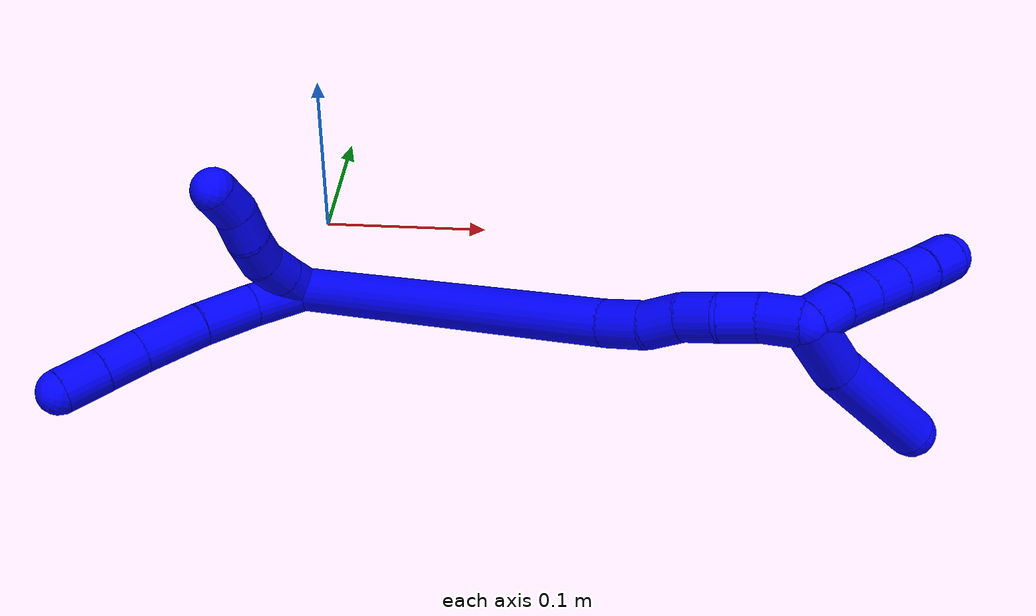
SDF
<sdf version="1.7">
 <world name="default">
  <model name="1">
   <static>0</static>
   <link name="1">
    <collision name="collision-cylinder-e_1_2_8">
     <pose>-0.005497 -0.004464 0.015262 0.284575 -0.332811 -0.048113</pose>
     <geometry><cylinder><radius>0.0125</radius><length>0.033649</length></cylinder></geometry>
     <surface>
      <friction><ode><mu>1.16</mu><mu2>1.16</mu2><slip1>0</slip1><slip2>0</slip2></ode></friction>
      <contact><ode><kp>1e+06</kp><kd>1</kd><max_vel>0</max_vel><min_depth>0.001</min_depth></ode></contact>
     </surface>
    </collision>
    <visual name="visual-cylinder-e_1_2_8">
     <pose>-0.005497 -0.004464 0.015262 0.284575 -0.332811 -0.048113</pose>
     <geometry><cylinder><radius>0.0125</radius><length>0.033649</length></cylinder></geometry>
     <material><ambient>0 0 1 1</ambient></material>
    </visual>
    <collision name="collision-cylinder-e_2_8_9">
     <pose>-0.015209 -0.014167 0.045218 0.342435 -0.263956 -0.045899</pose>
     <geometry><cylinder><radius>0.0125</radius><length>0.032321</length></cylinder></geometry>
     <surface>
      <friction><ode><mu>1.16</mu><mu2>1.16</mu2><slip1>0</slip1><slip2>0</slip2></ode></friction>
      <contact><ode><kp>1e+06</kp><kd>1</kd><max_vel>0</max_vel><min_depth>0.001</min_depth></ode></contact>
     </surface>
    </collision>
    <visual name="visual-cylinder-e_2_8_9">
     <pose>-0.015209 -0.014167 0.045218 0.342435 -0.263956 -0.045899</pose>
     <geometry><cylinder><radius>0.0125</radius><length>0.032321</length></cylinder></geometry>
     <material><ambient>0 0 1 1</ambient></material>
    </visual>
    <collision name="collision-cylinder-e_3_9_10">
     <pose>-0.024936 -0.026271 0.075903 0.405572 -0.30664 -0.063526</pose>
     <geometry><cylinder><radius>0.0125</radius><length>0.036506</length></cylinder></geometry>
     <surface>
      <friction><ode><mu>1.16</mu><mu2>1.16</mu2><slip1>0</slip1><slip2>0</slip2></ode></friction>
      <contact><ode><kp>1e+06</kp><kd>1</kd><max_vel>0</max_vel><min_depth>0.001</min_depth></ode></contact>
     </surface>
    </collision>
    <visual name="visual-cylinder-e_3_9_10">
     <pose>-0.024936 -0.026271 0.075903 0.405572 -0.30664 -0.063526</pose>
     <geometry><cylinder><radius>0.0125</radius><length>0.036506</length></cylinder></geometry>
     <material><ambient>0 0 1 1</ambient></material>
    </visual>
    <collision name="collision-cylinder-e_4_10_11">
     <pose>-0.033392 -0.037988 0.101984 0.448121 -0.257351 -0.058956</pose>
     <geometry><cylinder><radius>0.0125</radius><length>0.023154</length></cylinder></geometry>
     <surface>
      <friction><ode><mu>1.16</mu><mu2>1.16</mu2><slip1>0</slip1><slip2>0</slip2></ode></friction>
      <contact><ode><kp>1e+06</kp><kd>1</kd><max_vel>0</max_vel><min_depth>0.001</min_depth></ode></contact>
     </surface>
    </collision>
    <visual name="visual-cylinder-e_4_10_11">
     <pose>-0.033392 -0.037988 0.101984 0.448121 -0.257351 -0.058956</pose>
     <geometry><cylinder><radius>0.0125</radius><length>0.023154</length></cylinder></geometry>
     <material><ambient>0 0 1 1</ambient></material>
    </visual>
    <collision name="collision-cylinder-e_5_11_6">
     <pose>-0.039578 -0.047903 0.122672 0.445814 -0.269063 -0.061341</pose>
     <geometry><cylinder><radius>0.0125</radius><length>0.02437</length></cylinder></geometry>
     <surface>
      <friction><ode><mu>1.16</mu><mu2>1.16</mu2><slip1>0</slip1><slip2>0</slip2></ode></friction>
      <contact><ode><kp>1e+06</kp><kd>1</kd><max_vel>0</max_vel><min_depth>0.001</min_depth></ode></contact>
     </surface>
    </collision>
    <visual name="visual-cylinder-e_5_11_6">
     <pose>-0.039578 -0.047903 0.122672 0.445814 -0.269063 -0.061341</pose>
     <geometry><cylinder><radius>0.0125</radius><length>0.02437</length></cylinder></geometry>
     <material><ambient>0 0 1 1</ambient></material>
    </visual>
    <collision name="collision-cylinder-e_1_2_12">
     <pose>0.00298 0.002521 0.009207 -0.267306 0.302568 -0.040989</pose>
     <geometry><cylinder><radius>0.0125</radius><length>0.02</length></cylinder></geometry>
     <surface>
      <friction><ode><mu>1.16</mu><mu2>1.16</mu2><slip1>0</slip1><slip2>0</slip2></ode></friction>
      <contact><ode><kp>1e+06</kp><kd>1</kd><max_vel>0</max_vel><min_depth>0.001</min_depth></ode></contact>
     </surface>
    </collision>
    <visual name="visual-cylinder-e_1_2_12">
     <pose>0.00298 0.002521 0.009207 -0.267306 0.302568 -0.040989</pose>
     <geometry><cylinder><radius>0.0125</radius><length>0.02</length></cylinder></geometry>
     <material><ambient>0 0 1 1</ambient></material>
    </visual>
    <collision name="collision-cylinder-e_2_12_13">
     <pose>0.009118 0.007787 0.027496 -0.293376 0.321313 -0.047877</pose>
     <geometry><cylinder><radius>0.0125</radius><length>0.02</length></cylinder></geometry>
     <surface>
      <friction><ode><mu>1.16</mu><mu2>1.16</mu2><slip1>0</slip1><slip2>0</slip2></ode></friction>
      <contact><ode><kp>1e+06</kp><kd>1</kd><max_vel>0</max_vel><min_depth>0.001</min_depth></ode></contact>
     </surface>
    </collision>
    <visual name="visual-cylinder-e_2_12_13">
     <pose>0.009118 0.007787 0.027496 -0.293376 0.321313 -0.047877</pose>
     <geometry><cylinder><radius>0.0125</radius><length>0.02</length></cylinder></geometry>
     <material><ambient>0 0 1 1</ambient></material>
    </visual>
    <collision name="collision-cylinder-e_3_13_14">
     <pose>0.017424 0.014557 0.044148 -0.488901 0.540851 -0.138077</pose>
     <geometry><cylinder><radius>0.0125</radius><length>0.02</length></cylinder></geometry>
     <surface>
      <friction><ode><mu>1.16</mu><mu2>1.16</mu2><slip1>0</slip1><slip2>0</slip2></ode></friction>
      <contact><ode><kp>1e+06</kp><kd>1</kd><max_vel>0</max_vel><min_depth>0.001</min_depth></ode></contact>
     </surface>
    </collision>
    <visual name="visual-cylinder-e_3_13_14">
     <pose>0.017424 0.014557 0.044148 -0.488901 0.540851 -0.138077</pose>
     <geometry><cylinder><radius>0.0125</radius><length>0.02</length></cylinder></geometry>
     <material><ambient>0 0 1 1</ambient></material>
    </visual>
    <collision name="collision-cylinder-e_4_14_15">
     <pose>0.027348 0.02423 0.058448 -0.697977 0.497756 -0.184435</pose>
     <geometry><cylinder><radius>0.0125</radius><length>0.02</length></cylinder></geometry>
     <surface>
      <friction><ode><mu>1.16</mu><mu2>1.16</mu2><slip1>0</slip1><slip2>0</slip2></ode></friction>
      <contact><ode><kp>1e+06</kp><kd>1</kd><max_vel>0</max_vel><min_depth>0.001</min_depth></ode></contact>
     </surface>
    </collision>
    <visual name="visual-cylinder-e_4_14_15">
     <pose>0.027348 0.02423 0.058448 -0.697977 0.497756 -0.184435</pose>
     <geometry><cylinder><radius>0.0125</radius><length>0.02</length></cylinder></geometry>
     <material><ambient>0 0 1 1</ambient></material>
    </visual>
    <collision name="collision-cylinder-e_5_15_5">
     <pose>0.035671 0.03378 0.073675 -0.430733 0.362813 -0.080208</pose>
     <geometry><cylinder><radius>0.0125</radius><length>0.02</length></cylinder></geometry>
     <surface>
      <friction><ode><mu>1.16</mu><mu2>1.16</mu2><slip1>0</slip1><slip2>0</slip2></ode></friction>
      <contact><ode><kp>1e+06</kp><kd>1</kd><max_vel>0</max_vel><min_depth>0.001</min_depth></ode></contact>
     </surface>
    </collision>
    <visual name="visual-cylinder-e_5_15_5">
     <pose>0.035671 0.03378 0.073675 -0.430733 0.362813 -0.080208</pose>
     <geometry><cylinder><radius>0.0125</radius><length>0.02</length></cylinder></geometry>
     <material><ambient>0 0 1 1</ambient></material>
    </visual>
    <collision name="collision-cylinder-e_1_2_16">
     <pose>0.087661 -0.031214 -0.026922 2.28251 1.13126 1.89148</pose>
     <geometry><cylinder><radius>0.0125</radius><length>0.193738</length></cylinder></geometry>
     <surface>
      <friction><ode><mu>1.16</mu><mu2>1.16</mu2><slip1>0</slip1><slip2>0</slip2></ode></friction>
      <contact><ode><kp>1e+06</kp><kd>1</kd><max_vel>0</max_vel><min_depth>0.001</min_depth></ode></contact>
     </surface>
    </collision>
    <visual name="visual-cylinder-e_1_2_16">
     <pose>0.087661 -0.031214 -0.026922 2.28251 1.13126 1.89148</pose>
     <geometry><cylinder><radius>0.0125</radius><length>0.193738</length></cylinder></geometry>
     <material><ambient>0 0 1 1</ambient></material>
    </visual>
    <collision name="collision-cylinder-e_2_16_17">
     <pose>0.186256 -0.065619 -0.056468 2.25879 1.20945 1.94221</pose>
     <geometry><cylinder><radius>0.0125</radius><length>0.023376</length></cylinder></geometry>
     <surface>
      <friction><ode><mu>1.16</mu><mu2>1.16</mu2><slip1>0</slip1><slip2>0</slip2></ode></friction>
      <contact><ode><kp>1e+06</kp><kd>1</kd><max_vel>0</max_vel><min_depth>0.001</min_depth></ode></contact>
     </surface>
    </collision>
    <visual name="visual-cylinder-e_2_16_17">
     <pose>0.186256 -0.065619 -0.056468 2.25879 1.20945 1.94221</pose>
     <geometry><cylinder><radius>0.0125</radius><length>0.023376</length></cylinder></geometry>
     <material><ambient>0 0 1 1</ambient></material>
    </visual>
    <collision name="collision-cylinder-e_3_17_18">
     <pose>0.207276 -0.069162 -0.061241 2.97998 1.35818 2.94159</pose>
     <geometry><cylinder><radius>0.0125</radius><length>0.020637</length></cylinder></geometry>
     <surface>
      <friction><ode><mu>1.16</mu><mu2>1.16</mu2><slip1>0</slip1><slip2>0</slip2></ode></friction>
      <contact><ode><kp>1e+06</kp><kd>1</kd><max_vel>0</max_vel><min_depth>0.001</min_depth></ode></contact>
     </surface>
    </collision>
    <visual name="visual-cylinder-e_3_17_18">
     <pose>0.207276 -0.069162 -0.061241 2.97998 1.35818 2.94159</pose>
     <geometry><cylinder><radius>0.0125</radius><length>0.020637</length></cylinder></geometry>
     <material><ambient>0 0 1 1</ambient></material>
    </visual>
    <collision name="collision-cylinder-e_4_18_19">
     <pose>0.226873 -0.071998 -0.065333 2.23442 1.25049 1.95365</pose>
     <geometry><cylinder><radius>0.0125</radius><length>0.02004</length></cylinder></geometry>
     <surface>
      <friction><ode><mu>1.16</mu><mu2>1.16</mu2><slip1>0</slip1><slip2>0</slip2></ode></friction>
      <contact><ode><kp>1e+06</kp><kd>1</kd><max_vel>0</max_vel><min_depth>0.001</min_depth></ode></contact>
     </surface>
    </collision>
    <visual name="visual-cylinder-e_4_18_19">
     <pose>0.226873 -0.071998 -0.065333 2.23442 1.25049 1.95365</pose>
     <geometry><cylinder><radius>0.0125</radius><length>0.02004</length></cylinder></geometry>
     <material><ambient>0 0 1 1</ambient></material>
    </visual>
    <collision name="collision-cylinder-e_5_19_20">
     <pose>0.245297 -0.076546 -0.071328 2.67068 1.09915 2.39497</pose>
     <geometry><cylinder><radius>0.0125</radius><length>0.020012</length></cylinder></geometry>
     <surface>
      <friction><ode><mu>1.16</mu><mu2>1.16</mu2><slip1>0</slip1><slip2>0</slip2></ode></friction>
      <contact><ode><kp>1e+06</kp><kd>1</kd><max_vel>0</max_vel><min_depth>0.001</min_depth></ode></contact>
     </surface>
    </collision>
    <visual name="visual-cylinder-e_5_19_20">
     <pose>0.245297 -0.076546 -0.071328 2.67068 1.09915 2.39497</pose>
     <geometry><cylinder><radius>0.0125</radius><length>0.020012</length></cylinder></geometry>
     <material><ambient>0 0 1 1</ambient></material>
    </visual>
    <collision name="collision-cylinder-e_6_20_1">
     <pose>0.264009 -0.08238 -0.078974 2.33206 1.08212 1.90279</pose>
     <geometry><cylinder><radius>0.0125</radius><length>0.022196</length></cylinder></geometry>
     <surface>
      <friction><ode><mu>1.16</mu><mu2>1.16</mu2><slip1>0</slip1><slip2>0</slip2></ode></friction>
      <contact><ode><kp>1e+06</kp><kd>1</kd><max_vel>0</max_vel><min_depth>0.001</min_depth></ode></contact>
     </surface>
    </collision>
    <visual name="visual-cylinder-e_6_20_1">
     <pose>0.264009 -0.08238 -0.078974 2.33206 1.08212 1.90279</pose>
     <geometry><cylinder><radius>0.0125</radius><length>0.022196</length></cylinder></geometry>
     <material><ambient>0 0 1 1</ambient></material>
    </visual>
    <collision name="collision-cylinder-e_1_1_21">
     <pose>0.276844 -0.082427 -0.091338 -2.73991 0.308406 -1.30417</pose>
     <geometry><cylinder><radius>0.0125</radius><length>0.02</length></cylinder></geometry>
     <surface>
      <friction><ode><mu>1.16</mu><mu2>1.16</mu2><slip1>0</slip1><slip2>0</slip2></ode></friction>
      <contact><ode><kp>1e+06</kp><kd>1</kd><max_vel>0</max_vel><min_depth>0.001</min_depth></ode></contact>
     </surface>
    </collision>
    <visual name="visual-cylinder-e_1_1_21">
     <pose>0.276844 -0.082427 -0.091338 -2.73991 0.308406 -1.30417</pose>
     <geometry><cylinder><radius>0.0125</radius><length>0.02</length></cylinder></geometry>
     <material><ambient>0 0 1 1</ambient></material>
    </visual>
    <collision name="collision-cylinder-e_2_21_22">
     <pose>0.282878 -0.075813 -0.109199 -2.83392 0.304588 -1.56057</pose>
     <geometry><cylinder><radius>0.0125</radius><length>0.02</length></cylinder></geometry>
     <surface>
      <friction><ode><mu>1.16</mu><mu2>1.16</mu2><slip1>0</slip1><slip2>0</slip2></ode></friction>
      <contact><ode><kp>1e+06</kp><kd>1</kd><max_vel>0</max_vel><min_depth>0.001</min_depth></ode></contact>
     </surface>
    </collision>
    <visual name="visual-cylinder-e_2_21_22">
     <pose>0.282878 -0.075813 -0.109199 -2.83392 0.304588 -1.56057</pose>
     <geometry><cylinder><radius>0.0125</radius><length>0.02</length></cylinder></geometry>
     <material><ambient>0 0 1 1</ambient></material>
    </visual>
    <collision name="collision-cylinder-e_3_22_23">
     <pose>0.289033 -0.070089 -0.127346 -2.83818 0.321114 -1.62841</pose>
     <geometry><cylinder><radius>0.0125</radius><length>0.02</length></cylinder></geometry>
     <surface>
      <friction><ode><mu>1.16</mu><mu2>1.16</mu2><slip1>0</slip1><slip2>0</slip2></ode></friction>
      <contact><ode><kp>1e+06</kp><kd>1</kd><max_vel>0</max_vel><min_depth>0.001</min_depth></ode></contact>
     </surface>
    </collision>
    <visual name="visual-cylinder-e_3_22_23">
     <pose>0.289033 -0.070089 -0.127346 -2.83818 0.321114 -1.62841</pose>
     <geometry><cylinder><radius>0.0125</radius><length>0.02</length></cylinder></geometry>
     <material><ambient>0 0 1 1</ambient></material>
    </visual>
    <collision name="collision-cylinder-e_4_23_24">
     <pose>0.29537 -0.064499 -0.145473 -2.84674 0.323683 -1.66544</pose>
     <geometry><cylinder><radius>0.0125</radius><length>0.02</length></cylinder></geometry>
     <surface>
      <friction><ode><mu>1.16</mu><mu2>1.16</mu2><slip1>0</slip1><slip2>0</slip2></ode></friction>
      <contact><ode><kp>1e+06</kp><kd>1</kd><max_vel>0</max_vel><min_depth>0.001</min_depth></ode></contact>
     </surface>
    </collision>
    <visual name="visual-cylinder-e_4_23_24">
     <pose>0.29537 -0.064499 -0.145473 -2.84674 0.323683 -1.66544</pose>
     <geometry><cylinder><radius>0.0125</radius><length>0.02</length></cylinder></geometry>
     <material><ambient>0 0 1 1</ambient></material>
    </visual>
    <collision name="collision-cylinder-e_5_24_4">
     <pose>0.300997 -0.058549 -0.1637 -2.80591 0.247162 -1.2652</pose>
     <geometry><cylinder><radius>0.0125</radius><length>0.02</length></cylinder></geometry>
     <surface>
      <friction><ode><mu>1.16</mu><mu2>1.16</mu2><slip1>0</slip1><slip2>0</slip2></ode></friction>
      <contact><ode><kp>1e+06</kp><kd>1</kd><max_vel>0</max_vel><min_depth>0.001</min_depth></ode></contact>
     </surface>
    </collision>
    <visual name="visual-cylinder-e_5_24_4">
     <pose>0.300997 -0.058549 -0.1637 -2.80591 0.247162 -1.2652</pose>
     <geometry><cylinder><radius>0.0125</radius><length>0.02</length></cylinder></geometry>
     <material><ambient>0 0 1 1</ambient></material>
    </visual>
    <collision name="collision-cylinder-e_1_1_25">
     <pose>0.2699 -0.095566 -0.097321 2.57363 -0.219729 -0.722684</pose>
     <geometry><cylinder><radius>0.0125</radius><length>0.035864</length></cylinder></geometry>
     <surface>
      <friction><ode><mu>1.16</mu><mu2>1.16</mu2><slip1>0</slip1><slip2>0</slip2></ode></friction>
      <contact><ode><kp>1e+06</kp><kd>1</kd><max_vel>0</max_vel><min_depth>0.001</min_depth></ode></contact>
     </surface>
    </collision>
    <visual name="visual-cylinder-e_1_1_25">
     <pose>0.2699 -0.095566 -0.097321 2.57363 -0.219729 -0.722684</pose>
     <geometry><cylinder><radius>0.0125</radius><length>0.035864</length></cylinder></geometry>
     <material><ambient>0 0 1 1</ambient></material>
    </visual>
    <collision name="collision-cylinder-e_2_25_3">
     <pose>0.266159 -0.120857 -0.139936 2.62365 0.005245 0.019796</pose>
     <geometry><cylinder><radius>0.0125</radius><length>0.064136</length></cylinder></geometry>
     <surface>
      <friction><ode><mu>1.16</mu><mu2>1.16</mu2><slip1>0</slip1><slip2>0</slip2></ode></friction>
      <contact><ode><kp>1e+06</kp><kd>1</kd><max_vel>0</max_vel><min_depth>0.001</min_depth></ode></contact>
     </surface>
    </collision>
    <visual name="visual-cylinder-e_2_25_3">
     <pose>0.266159 -0.120857 -0.139936 2.62365 0.005245 0.019796</pose>
     <geometry><cylinder><radius>0.0125</radius><length>0.064136</length></cylinder></geometry>
     <material><ambient>0 0 1 1</ambient></material>
    </visual>
    <collision name="collision-sphere-3">
     <pose>0.266328 -0.136733 -0.167797 0 -0 0</pose>
     <geometry><sphere><radius>0.0125</radius></sphere></geometry>
     <surface>
      <friction><ode><mu>1.16</mu><mu2>1.16</mu2><slip1>0</slip1><slip2>0</slip2></ode></friction>
      <contact><ode><kp>1e+06</kp><kd>1</kd><max_vel>0</max_vel><min_depth>0.001</min_depth></ode></contact>
     </surface>
    </collision>
    <visual name="visual-sphere-3">
     <pose>0.266328 -0.136733 -0.167797 0 -0 0</pose>
     <geometry><sphere><radius>0.0125</radius></sphere></geometry>
     <material><ambient>0 0 1 1</ambient></material>
    </visual>
    <collision name="collision-sphere-25">
     <pose>0.265991 -0.10498 -0.112074 0 -0 0</pose>
     <geometry><sphere><radius>0.0125</radius></sphere></geometry>
     <surface>
      <friction><ode><mu>1.16</mu><mu2>1.16</mu2><slip1>0</slip1><slip2>0</slip2></ode></friction>
      <contact><ode><kp>1e+06</kp><kd>1</kd><max_vel>0</max_vel><min_depth>0.001</min_depth></ode></contact>
     </surface>
    </collision>
    <visual name="visual-sphere-25">
     <pose>0.265991 -0.10498 -0.112074 0 -0 0</pose>
     <geometry><sphere><radius>0.0125</radius></sphere></geometry>
     <material><ambient>0 0 1 1</ambient></material>
    </visual>
    <collision name="collision-sphere-4">
     <pose>0.303444 -0.055355 -0.172855 0 -0 0</pose>
     <geometry><sphere><radius>0.0125</radius></sphere></geometry>
     <surface>
      <friction><ode><mu>1.16</mu><mu2>1.16</mu2><slip1>0</slip1><slip2>0</slip2></ode></friction>
      <contact><ode><kp>1e+06</kp><kd>1</kd><max_vel>0</max_vel><min_depth>0.001</min_depth></ode></contact>
     </surface>
    </collision>
    <visual name="visual-sphere-4">
     <pose>0.303444 -0.055355 -0.172855 0 -0 0</pose>
     <geometry><sphere><radius>0.0125</radius></sphere></geometry>
     <material><ambient>0 0 1 1</ambient></material>
    </visual>
    <collision name="collision-sphere-24">
     <pose>0.298551 -0.061743 -0.154545 0 -0 0</pose>
     <geometry><sphere><radius>0.0125</radius></sphere></geometry>
     <surface>
      <friction><ode><mu>1.16</mu><mu2>1.16</mu2><slip1>0</slip1><slip2>0</slip2></ode></friction>
      <contact><ode><kp>1e+06</kp><kd>1</kd><max_vel>0</max_vel><min_depth>0.001</min_depth></ode></contact>
     </surface>
    </collision>
    <visual name="visual-sphere-24">
     <pose>0.298551 -0.061743 -0.154545 0 -0 0</pose>
     <geometry><sphere><radius>0.0125</radius></sphere></geometry>
     <material><ambient>0 0 1 1</ambient></material>
    </visual>
    <collision name="collision-sphere-23">
     <pose>0.29219 -0.067254 -0.136402 0 -0 0</pose>
     <geometry><sphere><radius>0.0125</radius></sphere></geometry>
     <surface>
      <friction><ode><mu>1.16</mu><mu2>1.16</mu2><slip1>0</slip1><slip2>0</slip2></ode></friction>
      <contact><ode><kp>1e+06</kp><kd>1</kd><max_vel>0</max_vel><min_depth>0.001</min_depth></ode></contact>
     </surface>
    </collision>
    <visual name="visual-sphere-23">
     <pose>0.29219 -0.067254 -0.136402 0 -0 0</pose>
     <geometry><sphere><radius>0.0125</radius></sphere></geometry>
     <material><ambient>0 0 1 1</ambient></material>
    </visual>
    <collision name="collision-sphere-22">
     <pose>0.285877 -0.072924 -0.118291 0 -0 0</pose>
     <geometry><sphere><radius>0.0125</radius></sphere></geometry>
     <surface>
      <friction><ode><mu>1.16</mu><mu2>1.16</mu2><slip1>0</slip1><slip2>0</slip2></ode></friction>
      <contact><ode><kp>1e+06</kp><kd>1</kd><max_vel>0</max_vel><min_depth>0.001</min_depth></ode></contact>
     </surface>
    </collision>
    <visual name="visual-sphere-22">
     <pose>0.285877 -0.072924 -0.118291 0 -0 0</pose>
     <geometry><sphere><radius>0.0125</radius></sphere></geometry>
     <material><ambient>0 0 1 1</ambient></material>
    </visual>
    <collision name="collision-sphere-21">
     <pose>0.279879 -0.078702 -0.100107 0 -0 0</pose>
     <geometry><sphere><radius>0.0125</radius></sphere></geometry>
     <surface>
      <friction><ode><mu>1.16</mu><mu2>1.16</mu2><slip1>0</slip1><slip2>0</slip2></ode></friction>
      <contact><ode><kp>1e+06</kp><kd>1</kd><max_vel>0</max_vel><min_depth>0.001</min_depth></ode></contact>
     </surface>
    </collision>
    <visual name="visual-sphere-21">
     <pose>0.279879 -0.078702 -0.100107 0 -0 0</pose>
     <geometry><sphere><radius>0.0125</radius></sphere></geometry>
     <material><ambient>0 0 1 1</ambient></material>
    </visual>
    <collision name="collision-sphere-1">
     <pose>0.273808 -0.086152 -0.082568 0 -0 0</pose>
     <geometry><sphere><radius>0.0125</radius></sphere></geometry>
     <surface>
      <friction><ode><mu>1.16</mu><mu2>1.16</mu2><slip1>0</slip1><slip2>0</slip2></ode></friction>
      <contact><ode><kp>1e+06</kp><kd>1</kd><max_vel>0</max_vel><min_depth>0.001</min_depth></ode></contact>
     </surface>
    </collision>
    <visual name="visual-sphere-1">
     <pose>0.273808 -0.086152 -0.082568 0 -0 0</pose>
     <geometry><sphere><radius>0.0125</radius></sphere></geometry>
     <material><ambient>0 0 1 1</ambient></material>
    </visual>
    <collision name="collision-sphere-6">
     <pose>-0.042817 -0.052969 0.133271 0 -0 0</pose>
     <geometry><sphere><radius>0.0125</radius></sphere></geometry>
     <surface>
      <friction><ode><mu>1.16</mu><mu2>1.16</mu2><slip1>0</slip1><slip2>0</slip2></ode></friction>
      <contact><ode><kp>1e+06</kp><kd>1</kd><max_vel>0</max_vel><min_depth>0.001</min_depth></ode></contact>
     </surface>
    </collision>
    <visual name="visual-sphere-6">
     <pose>-0.042817 -0.052969 0.133271 0 -0 0</pose>
     <geometry><sphere><radius>0.0125</radius></sphere></geometry>
     <material><ambient>0 0 1 1</ambient></material>
    </visual>
    <collision name="collision-sphere-11">
     <pose>-0.036338 -0.042838 0.112074 0 -0 0</pose>
     <geometry><sphere><radius>0.0125</radius></sphere></geometry>
     <surface>
      <friction><ode><mu>1.16</mu><mu2>1.16</mu2><slip1>0</slip1><slip2>0</slip2></ode></friction>
      <contact><ode><kp>1e+06</kp><kd>1</kd><max_vel>0</max_vel><min_depth>0.001</min_depth></ode></contact>
     </surface>
    </collision>
    <visual name="visual-sphere-11">
     <pose>-0.036338 -0.042838 0.112074 0 -0 0</pose>
     <geometry><sphere><radius>0.0125</radius></sphere></geometry>
     <material><ambient>0 0 1 1</ambient></material>
    </visual>
    <collision name="collision-sphere-10">
     <pose>-0.030445 -0.033137 0.091893 0 -0 0</pose>
     <geometry><sphere><radius>0.0125</radius></sphere></geometry>
     <surface>
      <friction><ode><mu>1.16</mu><mu2>1.16</mu2><slip1>0</slip1><slip2>0</slip2></ode></friction>
      <contact><ode><kp>1e+06</kp><kd>1</kd><max_vel>0</max_vel><min_depth>0.001</min_depth></ode></contact>
     </surface>
    </collision>
    <visual name="visual-sphere-10">
     <pose>-0.030445 -0.033137 0.091893 0 -0 0</pose>
     <geometry><sphere><radius>0.0125</radius></sphere></geometry>
     <material><ambient>0 0 1 1</ambient></material>
    </visual>
    <collision name="collision-sphere-9">
     <pose>-0.019426 -0.019406 0.059914 0 -0 0</pose>
     <geometry><sphere><radius>0.0125</radius></sphere></geometry>
     <surface>
      <friction><ode><mu>1.16</mu><mu2>1.16</mu2><slip1>0</slip1><slip2>0</slip2></ode></friction>
      <contact><ode><kp>1e+06</kp><kd>1</kd><max_vel>0</max_vel><min_depth>0.001</min_depth></ode></contact>
     </surface>
    </collision>
    <visual name="visual-sphere-9">
     <pose>-0.019426 -0.019406 0.059914 0 -0 0</pose>
     <geometry><sphere><radius>0.0125</radius></sphere></geometry>
     <material><ambient>0 0 1 1</ambient></material>
    </visual>
    <collision name="collision-sphere-2">
     <geometry><sphere><radius>0.0125</radius></sphere></geometry>
     <surface>
      <friction><ode><mu>1.16</mu><mu2>1.16</mu2><slip1>0</slip1><slip2>0</slip2></ode></friction>
      <contact><ode><kp>1e+06</kp><kd>1</kd><max_vel>0</max_vel><min_depth>0.001</min_depth></ode></contact>
     </surface>
    </collision>
    <visual name="visual-sphere-2">
     <geometry><sphere><radius>0.0125</radius></sphere></geometry>
     <material><ambient>0 0 1 1</ambient></material>
    </visual>
    <collision name="collision-sphere-19">
     <pose>0.236383 -0.074483 -0.067277 0 -0 0</pose>
     <geometry><sphere><radius>0.0125</radius></sphere></geometry>
     <surface>
      <friction><ode><mu>1.16</mu><mu2>1.16</mu2><slip1>0</slip1><slip2>0</slip2></ode></friction>
      <contact><ode><kp>1e+06</kp><kd>1</kd><max_vel>0</max_vel><min_depth>0.001</min_depth></ode></contact>
     </surface>
    </collision>
    <visual name="visual-sphere-19">
     <pose>0.236383 -0.074483 -0.067277 0 -0 0</pose>
     <geometry><sphere><radius>0.0125</radius></sphere></geometry>
     <material><ambient>0 0 1 1</ambient></material>
    </visual>
    <collision name="collision-sphere-8">
     <pose>-0.010993 -0.008928 0.030523 0 -0 0</pose>
     <geometry><sphere><radius>0.0125</radius></sphere></geometry>
     <surface>
      <friction><ode><mu>1.16</mu><mu2>1.16</mu2><slip1>0</slip1><slip2>0</slip2></ode></friction>
      <contact><ode><kp>1e+06</kp><kd>1</kd><max_vel>0</max_vel><min_depth>0.001</min_depth></ode></contact>
     </surface>
    </collision>
    <visual name="visual-sphere-8">
     <pose>-0.010993 -0.008928 0.030523 0 -0 0</pose>
     <geometry><sphere><radius>0.0125</radius></sphere></geometry>
     <material><ambient>0 0 1 1</ambient></material>
    </visual>
    <collision name="collision-sphere-12">
     <pose>0.005959 0.005043 0.018413 0 -0 0</pose>
     <geometry><sphere><radius>0.0125</radius></sphere></geometry>
     <surface>
      <friction><ode><mu>1.16</mu><mu2>1.16</mu2><slip1>0</slip1><slip2>0</slip2></ode></friction>
      <contact><ode><kp>1e+06</kp><kd>1</kd><max_vel>0</max_vel><min_depth>0.001</min_depth></ode></contact>
     </surface>
    </collision>
    <visual name="visual-sphere-12">
     <pose>0.005959 0.005043 0.018413 0 -0 0</pose>
     <geometry><sphere><radius>0.0125</radius></sphere></geometry>
     <material><ambient>0 0 1 1</ambient></material>
    </visual>
    <collision name="collision-sphere-13">
     <pose>0.012276 0.01053 0.036579 0 -0 0</pose>
     <geometry><sphere><radius>0.0125</radius></sphere></geometry>
     <surface>
      <friction><ode><mu>1.16</mu><mu2>1.16</mu2><slip1>0</slip1><slip2>0</slip2></ode></friction>
      <contact><ode><kp>1e+06</kp><kd>1</kd><max_vel>0</max_vel><min_depth>0.001</min_depth></ode></contact>
     </surface>
    </collision>
    <visual name="visual-sphere-13">
     <pose>0.012276 0.01053 0.036579 0 -0 0</pose>
     <geometry><sphere><radius>0.0125</radius></sphere></geometry>
     <material><ambient>0 0 1 1</ambient></material>
    </visual>
    <collision name="collision-sphere-14">
     <pose>0.022573 0.018583 0.051716 0 -0 0</pose>
     <geometry><sphere><radius>0.0125</radius></sphere></geometry>
     <surface>
      <friction><ode><mu>1.16</mu><mu2>1.16</mu2><slip1>0</slip1><slip2>0</slip2></ode></friction>
      <contact><ode><kp>1e+06</kp><kd>1</kd><max_vel>0</max_vel><min_depth>0.001</min_depth></ode></contact>
     </surface>
    </collision>
    <visual name="visual-sphere-14">
     <pose>0.022573 0.018583 0.051716 0 -0 0</pose>
     <geometry><sphere><radius>0.0125</radius></sphere></geometry>
     <material><ambient>0 0 1 1</ambient></material>
    </visual>
    <collision name="collision-sphere-15">
     <pose>0.032122 0.029877 0.065179 0 -0 0</pose>
     <geometry><sphere><radius>0.0125</radius></sphere></geometry>
     <surface>
      <friction><ode><mu>1.16</mu><mu2>1.16</mu2><slip1>0</slip1><slip2>0</slip2></ode></friction>
      <contact><ode><kp>1e+06</kp><kd>1</kd><max_vel>0</max_vel><min_depth>0.001</min_depth></ode></contact>
     </surface>
    </collision>
    <visual name="visual-sphere-15">
     <pose>0.032122 0.029877 0.065179 0 -0 0</pose>
     <geometry><sphere><radius>0.0125</radius></sphere></geometry>
     <material><ambient>0 0 1 1</ambient></material>
    </visual>
    <collision name="collision-sphere-5">
     <pose>0.03922 0.037684 0.08217 0 -0 0</pose>
     <geometry><sphere><radius>0.0125</radius></sphere></geometry>
     <surface>
      <friction><ode><mu>1.16</mu><mu2>1.16</mu2><slip1>0</slip1><slip2>0</slip2></ode></friction>
      <contact><ode><kp>1e+06</kp><kd>1</kd><max_vel>0</max_vel><min_depth>0.001</min_depth></ode></contact>
     </surface>
    </collision>
    <visual name="visual-sphere-5">
     <pose>0.03922 0.037684 0.08217 0 -0 0</pose>
     <geometry><sphere><radius>0.0125</radius></sphere></geometry>
     <material><ambient>0 0 1 1</ambient></material>
    </visual>
    <collision name="collision-sphere-16">
     <pose>0.175323 -0.062427 -0.053844 0 -0 0</pose>
     <geometry><sphere><radius>0.0125</radius></sphere></geometry>
     <surface>
      <friction><ode><mu>1.16</mu><mu2>1.16</mu2><slip1>0</slip1><slip2>0</slip2></ode></friction>
      <contact><ode><kp>1e+06</kp><kd>1</kd><max_vel>0</max_vel><min_depth>0.001</min_depth></ode></contact>
     </surface>
    </collision>
    <visual name="visual-sphere-16">
     <pose>0.175323 -0.062427 -0.053844 0 -0 0</pose>
     <geometry><sphere><radius>0.0125</radius></sphere></geometry>
     <material><ambient>0 0 1 1</ambient></material>
    </visual>
    <collision name="collision-sphere-17">
     <pose>0.19719 -0.068811 -0.059092 0 -0 0</pose>
     <geometry><sphere><radius>0.0125</radius></sphere></geometry>
     <surface>
      <friction><ode><mu>1.16</mu><mu2>1.16</mu2><slip1>0</slip1><slip2>0</slip2></ode></friction>
      <contact><ode><kp>1e+06</kp><kd>1</kd><max_vel>0</max_vel><min_depth>0.001</min_depth></ode></contact>
     </surface>
    </collision>
    <visual name="visual-sphere-17">
     <pose>0.19719 -0.068811 -0.059092 0 -0 0</pose>
     <geometry><sphere><radius>0.0125</radius></sphere></geometry>
     <material><ambient>0 0 1 1</ambient></material>
    </visual>
    <collision name="collision-sphere-18">
     <pose>0.217362 -0.069512 -0.06339 0 -0 0</pose>
     <geometry><sphere><radius>0.0125</radius></sphere></geometry>
     <surface>
      <friction><ode><mu>1.16</mu><mu2>1.16</mu2><slip1>0</slip1><slip2>0</slip2></ode></friction>
      <contact><ode><kp>1e+06</kp><kd>1</kd><max_vel>0</max_vel><min_depth>0.001</min_depth></ode></contact>
     </surface>
    </collision>
    <visual name="visual-sphere-18">
     <pose>0.217362 -0.069512 -0.06339 0 -0 0</pose>
     <geometry><sphere><radius>0.0125</radius></sphere></geometry>
     <material><ambient>0 0 1 1</ambient></material>
    </visual>
    <collision name="collision-sphere-20">
     <pose>0.25421 -0.078608 -0.075379 0 -0 0</pose>
     <geometry><sphere><radius>0.0125</radius></sphere></geometry>
     <surface>
      <friction><ode><mu>1.16</mu><mu2>1.16</mu2><slip1>0</slip1><slip2>0</slip2></ode></friction>
      <contact><ode><kp>1e+06</kp><kd>1</kd><max_vel>0</max_vel><min_depth>0.001</min_depth></ode></contact>
     </surface>
    </collision>
    <visual name="visual-sphere-20">
     <pose>0.25421 -0.078608 -0.075379 0 -0 0</pose>
     <geometry><sphere><radius>0.0125</radius></sphere></geometry>
     <material><ambient>0 0 1 1</ambient></material>
    </visual>
    <inertial>
     <pose>0.126812 -0.045299 -0.030852 0 -0 0</pose>
     <mass>0.75</mass>
     <inertia>
      <ixx>0.000231</ixx>
      <ixy>0</ixy>
      <ixz>0</ixz>
      <iyy>0.000762</iyy>
      <iyz>0</iyz>
      <izz>-0.000349</izz>
     </inertia>
    </inertial>
   </link>
   <pose>0.001813 -0.087737 0.012233 0.961923 -0.661164 -0.472876</pose>
  </model>
 </world>
</sdf>
